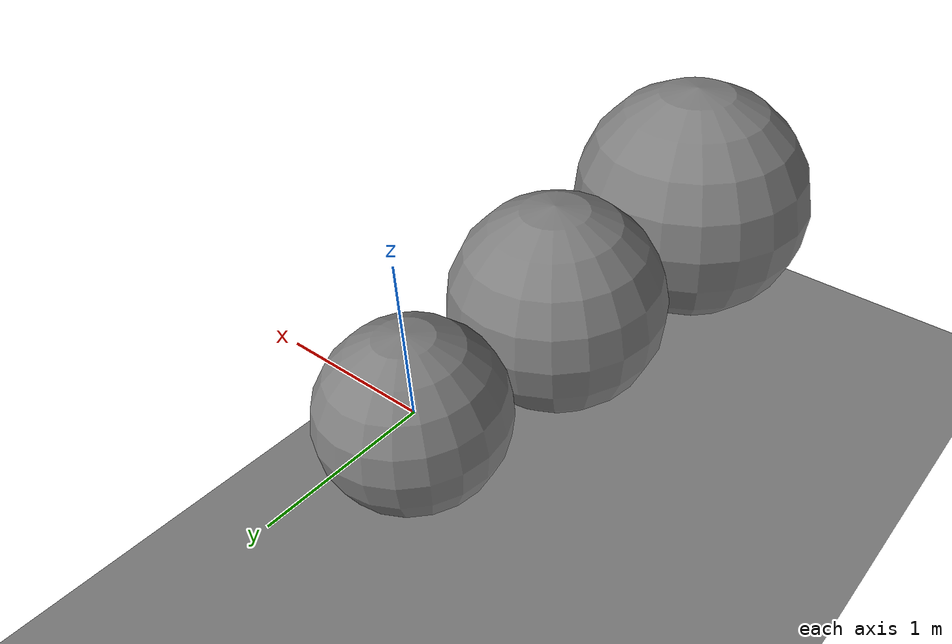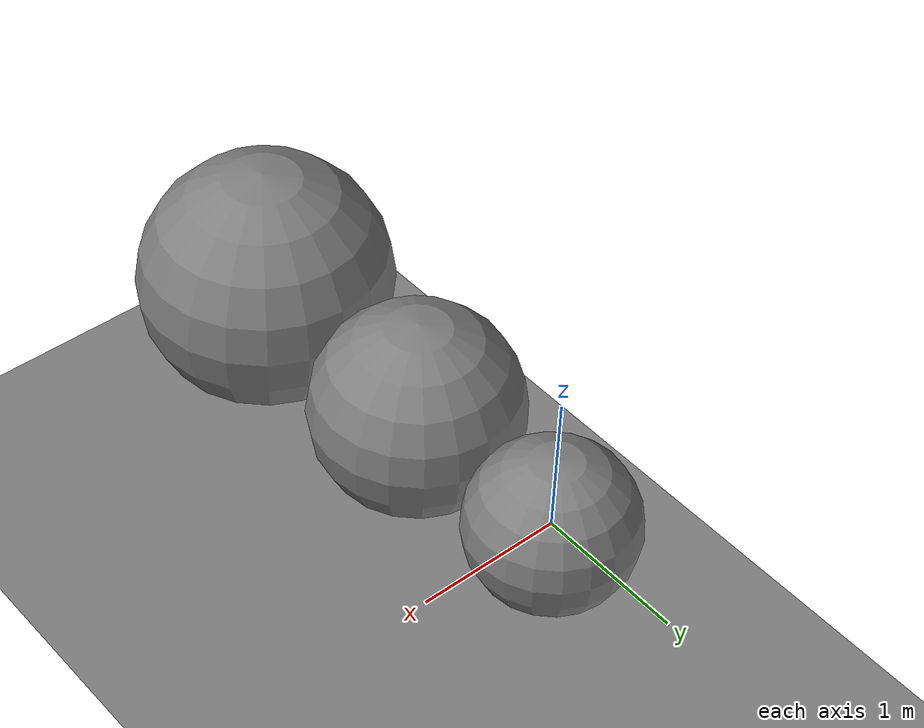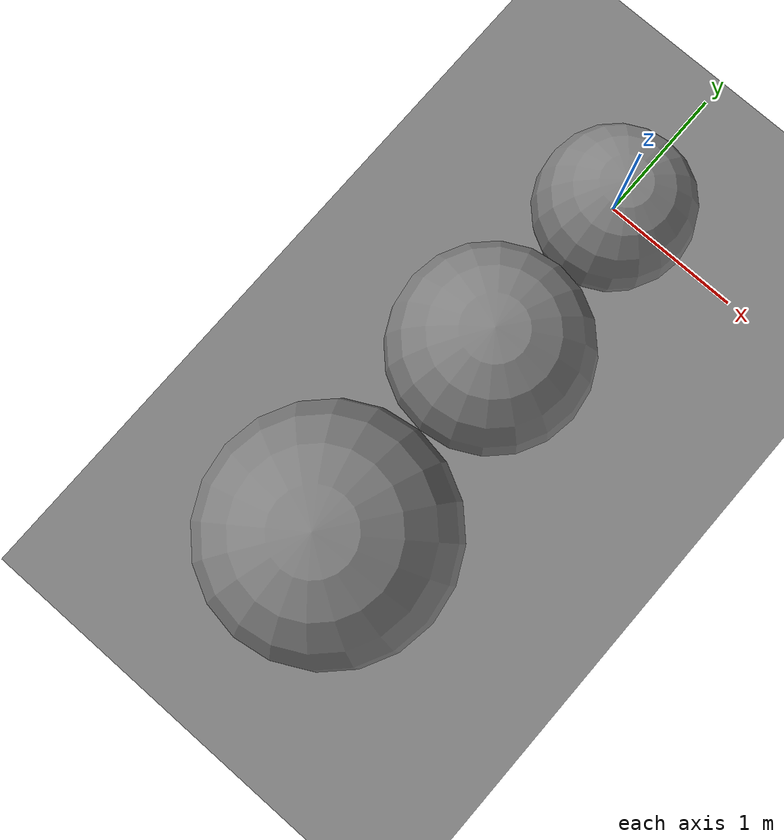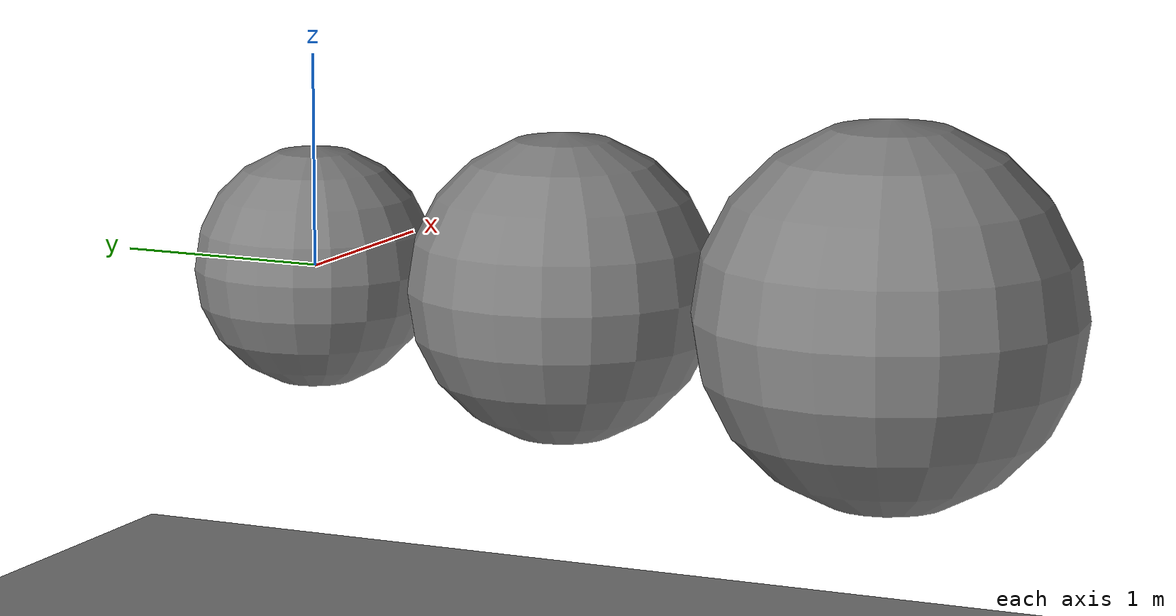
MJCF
<mujoco model="unnamed_model">
  <default>
    <default class="/"/>
  </default>
  <worldbody>
    <geom name="//unnamed_geom_0" class="/" type="plane" size="100 100 0.10000000000000001" pos="0 0 -1.8916027811660161"/>
    <body name="body0" pos="0 0 0">
      <joint name="//unnamed_joint_0" class="/" type="free"/>
      <geom name="//unnamed_geom_1" class="/" type="sphere" size="0.56723617840109775 0.56723617840109775 0.56723617840109775"/>
      <body name="body1" pos="0 -1.2869625928365598 0">
        <geom name="//unnamed_geom_2" class="/" type="sphere" size="0.71972641443546204 0.71972641443546204 0.71972641443546204"/>
        <joint name="//unnamed_joint_1" class="/" type="hinge" axis="0 1 0"/>
        <body name="body2" pos="0 -1.6113291956014781 0">
          <geom name="//unnamed_geom_3" class="/" type="sphere" size="0.8916027811660161 0.8916027811660161 0.8916027811660161"/>
          <joint name="//unnamed_joint_2" class="/" type="hinge" axis="0 1 0"/>
        </body>
      </body>
    </body>
  </worldbody>
  <actuator>
    <motor name="body1_motor" class="/" ctrllimited="true" ctrlrange="-100 100" joint="//unnamed_joint_1"/>
    <motor name="body2_motor" class="/" ctrllimited="true" ctrlrange="-100 100" joint="//unnamed_joint_2"/>
  </actuator>
</mujoco>
